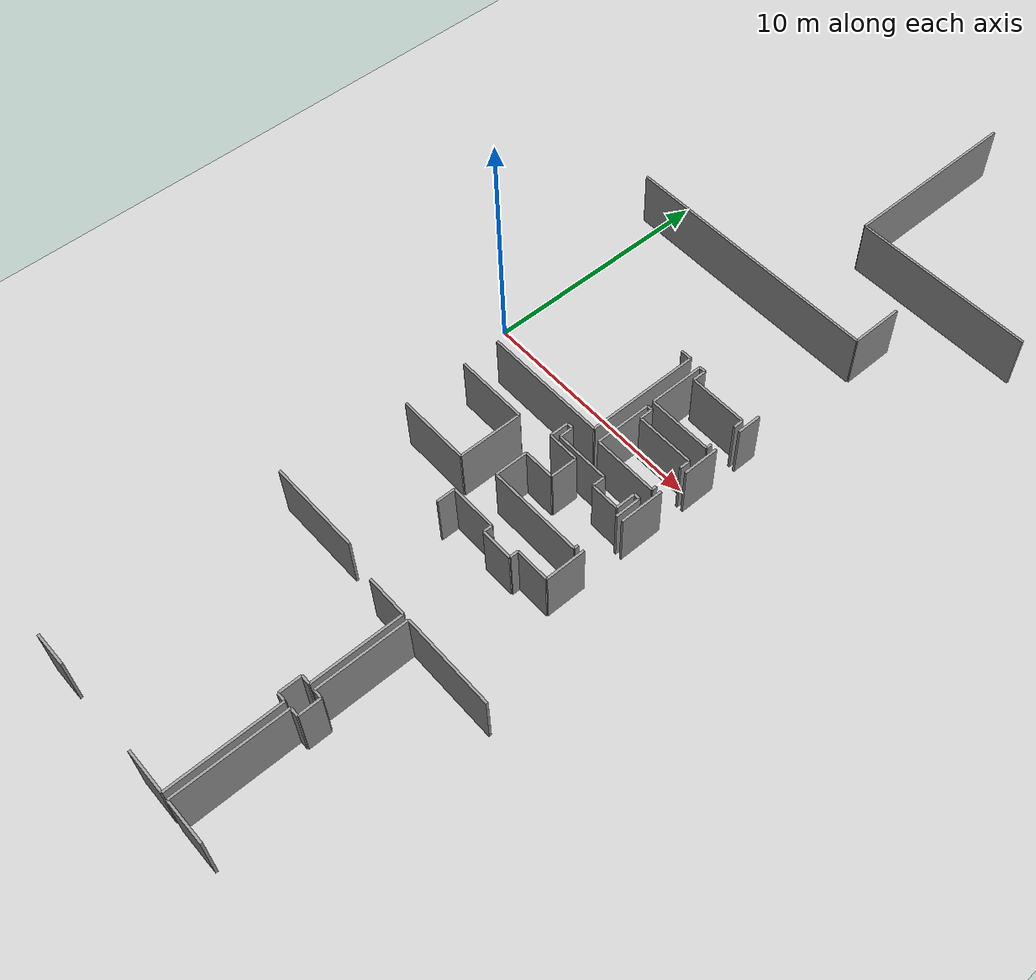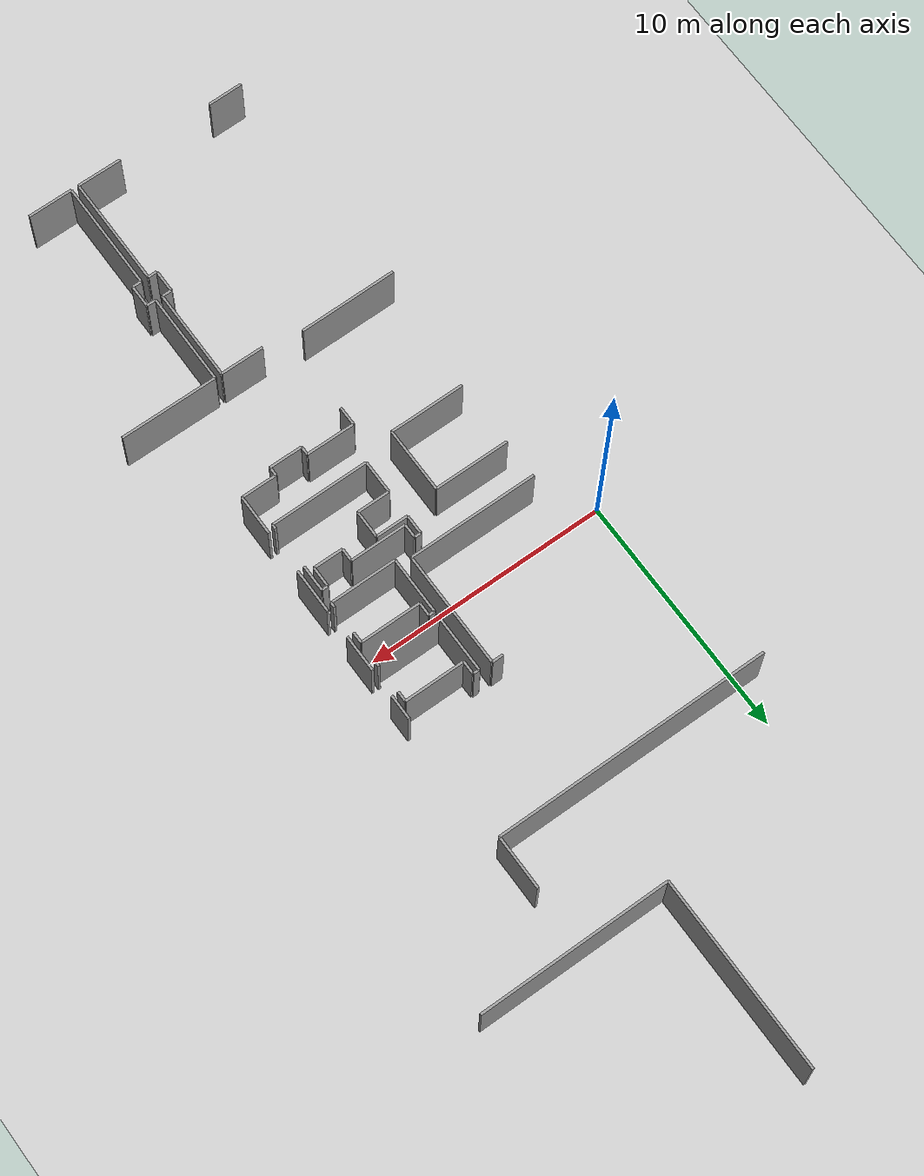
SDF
<sdf version="1.6">
 <world name="default">
  <model name="ground_plane">
   <static>1</static>
   <link name="link">
    <collision name="collision">
     <geometry><plane><normal>0 0 1</normal><size>100 100</size></plane></geometry>
     <surface><friction><ode><mu>100</mu><mu2>50</mu2></ode></friction></surface>
    </collision>
    <visual name="visual">
     <cast_shadows>0</cast_shadows>
     <geometry><plane><normal>0 0 1</normal><size>100 100</size></plane></geometry>
     <material>
      <script><uri>file://media/materials/scripts/gazebo.material</uri><name>Gazebo/Grey</name></script>
     </material>
    </visual>
   </link>
  </model>
  <model name="50057025">
   <static>1</static>
   <link name="Wall_84">
    <collision name="Wall_84_Collision">
     <geometry><box><size>1.79058842305 0.1 2.5</size></box></geometry>
     <pose>0.895294211524 0 1.25 0 0 0</pose>
    </collision>
    <visual name="Wall_84_Visual">
     <pose>0.895294211524 0 1.25 0 0 0</pose>
     <geometry><box><size>1.79058842305 0.1 2.5</size></box></geometry>
     <material>
      <script><uri>file://media/materials/scripts/gazebo.material</uri><name>Gazebo/Grey</name></script>
      <ambient>1 1 1 1</ambient>
     </material>
    </visual>
    <pose>62.4723723492 -32.3245731251 0 0 0 0.0</pose>
   </link>
   <link name="Wall_85">
    <collision name="Wall_85_Collision">
     <geometry><box><size>3.8203103923 0.1 2.5</size></box></geometry>
     <pose>1.91015519615 0 1.25 0 0 0</pose>
    </collision>
    <visual name="Wall_85_Visual">
     <pose>1.91015519615 0 1.25 0 0 0</pose>
     <geometry><box><size>3.8203103923 0.1 2.5</size></box></geometry>
     <material>
      <script><uri>file://media/materials/scripts/gazebo.material</uri><name>Gazebo/Grey</name></script>
      <ambient>1 1 1 1</ambient>
     </material>
    </visual>
    <pose>64.2629607722 -32.3245731251 0 0 0 -1.57079632679</pose>
   </link>
   <link name="Wall_86">
    <collision name="Wall_86_Collision">
     <geometry><box><size>0.395811616469 0.1 2.5</size></box></geometry>
     <pose>0.197905808235 0 1.25 0 0 0</pose>
    </collision>
    <visual name="Wall_86_Visual">
     <pose>0.197905808235 0 1.25 0 0 0</pose>
     <geometry><box><size>0.395811616469 0.1 2.5</size></box></geometry>
     <material>
      <script><uri>file://media/materials/scripts/gazebo.material</uri><name>Gazebo/Grey</name></script>
      <ambient>1 1 1 1</ambient>
     </material>
    </visual>
    <pose>64.2629607722 -36.1448835174 0 0 0 3.14159265359</pose>
   </link>
   <link name="Wall_87">
    <collision name="Wall_87_Collision">
     <geometry><box><size>0.941461678469 0.1 2.5</size></box></geometry>
     <pose>0.470730839235 0 1.25 0 0 0</pose>
    </collision>
    <visual name="Wall_87_Visual">
     <pose>0.470730839235 0 1.25 0 0 0</pose>
     <geometry><box><size>0.941461678469 0.1 2.5</size></box></geometry>
     <material>
      <script><uri>file://media/materials/scripts/gazebo.material</uri><name>Gazebo/Grey</name></script>
      <ambient>1 1 1 1</ambient>
     </material>
    </visual>
    <pose>63.8671491557 -36.1448835174 0 0 0 -1.57079632679</pose>
   </link>
   <link name="Wall_88">
    <collision name="Wall_88_Collision">
     <geometry><box><size>0.376685999162 0.1 2.5</size></box></geometry>
     <pose>0.188342999581 0 1.25 0 0 0</pose>
    </collision>
    <visual name="Wall_88_Visual">
     <pose>0.188342999581 0 1.25 0 0 0</pose>
     <geometry><box><size>0.376685999162 0.1 2.5</size></box></geometry>
     <material>
      <script><uri>file://media/materials/scripts/gazebo.material</uri><name>Gazebo/Grey</name></script>
      <ambient>1 1 1 1</ambient>
     </material>
    </visual>
    <pose>63.8671491557 -37.0863451959 0 0 0 0.0</pose>
   </link>
   <link name="Wall_89">
    <collision name="Wall_89_Collision">
     <geometry><box><size>4.62029316658 0.1 2.5</size></box></geometry>
     <pose>2.31014658329 0 1.25 0 0 0</pose>
    </collision>
    <visual name="Wall_89_Visual">
     <pose>2.31014658329 0 1.25 0 0 0</pose>
     <geometry><box><size>4.62029316658 0.1 2.5</size></box></geometry>
     <material>
      <script><uri>file://media/materials/scripts/gazebo.material</uri><name>Gazebo/Grey</name></script>
      <ambient>1 1 1 1</ambient>
     </material>
    </visual>
    <pose>64.2438351549 -37.0863451959 0 0 0 -1.57079632679</pose>
   </link>
   <link name="Wall_90">
    <collision name="Wall_90_Collision">
     <geometry><box><size>1.85391828168 0.1 2.5</size></box></geometry>
     <pose>0.926959140842 0 1.25 0 0 0</pose>
    </collision>
    <visual name="Wall_90_Visual">
     <pose>0.926959140842 0 1.25 0 0 0</pose>
     <geometry><box><size>1.85391828168 0.1 2.5</size></box></geometry>
     <material>
      <script><uri>file://media/materials/scripts/gazebo.material</uri><name>Gazebo/Grey</name></script>
      <ambient>1 1 1 1</ambient>
     </material>
    </visual>
    <pose>64.2438351549 -41.7066383624 0 0 0 3.14159265359</pose>
   </link>
   <link name="Wall_91">
    <collision name="Wall_91_Collision">
     <geometry><box><size>1.46189357891 0.1 2.5</size></box></geometry>
     <pose>0.730946789455 0 1.25 0 0 0</pose>
    </collision>
    <visual name="Wall_91_Visual">
     <pose>0.730946789455 0 1.25 0 0 0</pose>
     <geometry><box><size>1.46189357891 0.1 2.5</size></box></geometry>
     <material>
      <script><uri>file://media/materials/scripts/gazebo.material</uri><name>Gazebo/Grey</name></script>
      <ambient>1 1 1 1</ambient>
     </material>
    </visual>
    <pose>58.3810101619 -41.7066383624 0 0 0 -3.12911604602</pose>
   </link>
   <link name="Wall_92">
    <collision name="Wall_92_Collision">
     <geometry><box><size>4.62573953442 0.1 2.5</size></box></geometry>
     <pose>2.31286976721 0 1.25 0 0 0</pose>
    </collision>
    <visual name="Wall_92_Visual">
     <pose>2.31286976721 0 1.25 0 0 0</pose>
     <geometry><box><size>4.62573953442 0.1 2.5</size></box></geometry>
     <material>
      <script><uri>file://media/materials/scripts/gazebo.material</uri><name>Gazebo/Grey</name></script>
      <ambient>1 1 1 1</ambient>
     </material>
    </visual>
    <pose>64.5552913997 -41.7103114942 0 0 0 1.57079632679</pose>
   </link>
   <link name="Wall_93">
    <collision name="Wall_93_Collision">
     <geometry><box><size>0.37351950623 0.1 2.5</size></box></geometry>
     <pose>0.186759753115 0 1.25 0 0 0</pose>
    </collision>
    <visual name="Wall_93_Visual">
     <pose>0.186759753115 0 1.25 0 0 0</pose>
     <geometry><box><size>0.37351950623 0.1 2.5</size></box></geometry>
     <material>
      <script><uri>file://media/materials/scripts/gazebo.material</uri><name>Gazebo/Grey</name></script>
      <ambient>1 1 1 1</ambient>
     </material>
    </visual>
    <pose>64.5552913997 -37.0845719598 0 0 0 0.0</pose>
   </link>
   <link name="Wall_94">
    <collision name="Wall_94_Collision">
     <geometry><box><size>0.929049026177 0.1 2.5</size></box></geometry>
     <pose>0.464524513088 0 1.25 0 0 0</pose>
    </collision>
    <visual name="Wall_94_Visual">
     <pose>0.464524513088 0 1.25 0 0 0</pose>
     <geometry><box><size>0.929049026177 0.1 2.5</size></box></geometry>
     <material>
      <script><uri>file://media/materials/scripts/gazebo.material</uri><name>Gazebo/Grey</name></script>
      <ambient>1 1 1 1</ambient>
     </material>
    </visual>
    <pose>64.9288109059 -37.0845719598 0 0 0 1.57079632679</pose>
   </link>
   <link name="Wall_95">
    <collision name="Wall_95_Collision">
     <geometry><box><size>0.383145644742 0.1 2.5</size></box></geometry>
     <pose>0.191572822371 0 1.25 0 0 0</pose>
    </collision>
    <visual name="Wall_95_Visual">
     <pose>0.191572822371 0 1.25 0 0 0</pose>
     <geometry><box><size>0.383145644742 0.1 2.5</size></box></geometry>
     <material>
      <script><uri>file://media/materials/scripts/gazebo.material</uri><name>Gazebo/Grey</name></script>
      <ambient>1 1 1 1</ambient>
     </material>
    </visual>
    <pose>64.9288109059 -36.1555229336 0 0 0 3.14159265359</pose>
   </link>
   <link name="Wall_96">
    <collision name="Wall_96_Collision">
     <geometry><box><size>3.83094980855 0.1 2.5</size></box></geometry>
     <pose>1.91547490428 0 1.25 0 0 0</pose>
    </collision>
    <visual name="Wall_96_Visual">
     <pose>1.91547490428 0 1.25 0 0 0</pose>
     <geometry><box><size>3.83094980855 0.1 2.5</size></box></geometry>
     <material>
      <script><uri>file://media/materials/scripts/gazebo.material</uri><name>Gazebo/Grey</name></script>
      <ambient>1 1 1 1</ambient>
     </material>
    </visual>
    <pose>64.5456652612 -36.1555229336 0 0 0 1.57079632679</pose>
   </link>
   <link name="Wall_97">
    <collision name="Wall_97_Collision">
     <geometry><box><size>4.03208543958 0.1 2.5</size></box></geometry>
     <pose>2.01604271979 0 1.25 0 0 0</pose>
    </collision>
    <visual name="Wall_97_Visual">
     <pose>2.01604271979 0 1.25 0 0 0</pose>
     <geometry><box><size>4.03208543958 0.1 2.5</size></box></geometry>
     <material>
      <script><uri>file://media/materials/scripts/gazebo.material</uri><name>Gazebo/Grey</name></script>
      <ambient>1 1 1 1</ambient>
     </material>
    </visual>
    <pose>64.5456652612 -32.3245731251 0 0 0 0.0</pose>
   </link>
   <link name="Wall_103">
    <collision name="Wall_103_Collision">
     <geometry><box><size>1.86483521272 0.1 2.5</size></box></geometry>
     <pose>0.93241760636 0 1.25 0 0 0</pose>
    </collision>
    <visual name="Wall_103_Visual">
     <pose>0.93241760636 0 1.25 0 0 0</pose>
     <geometry><box><size>1.86483521272 0.1 2.5</size></box></geometry>
     <material>
      <script><uri>file://media/materials/scripts/gazebo.material</uri><name>Gazebo/Grey</name></script>
      <ambient>1 1 1 1</ambient>
     </material>
    </visual>
    <pose>66.420102417 -41.7008120154 0 0 0 -3.13649862715</pose>
   </link>
   <link name="Wall_220">
    <collision name="Wall_220_Collision">
     <geometry><box><size>0.787316802551 0.1 2.5</size></box></geometry>
     <pose>0.393658401276 0 1.25 0 0 0</pose>
    </collision>
    <visual name="Wall_220_Visual">
     <pose>0.393658401276 0 1.25 0 0 0</pose>
     <geometry><box><size>0.787316802551 0.1 2.5</size></box></geometry>
     <material>
      <script><uri>file://media/materials/scripts/gazebo.material</uri><name>Gazebo/Grey</name></script>
      <ambient>1 1 1 1</ambient>
     </material>
    </visual>
    <pose>61.5456031979 -28.7164177592 0 0 0 1.57079632679</pose>
   </link>
   <link name="Wall_221">
    <collision name="Wall_221_Collision">
     <geometry><box><size>2.01781595583 0.1 2.5</size></box></geometry>
     <pose>1.00890797792 0 1.25 0 0 0</pose>
    </collision>
    <visual name="Wall_221_Visual">
     <pose>1.00890797792 0 1.25 0 0 0</pose>
     <geometry><box><size>2.01781595583 0.1 2.5</size></box></geometry>
     <material>
      <script><uri>file://media/materials/scripts/gazebo.material</uri><name>Gazebo/Grey</name></script>
      <ambient>1 1 1 1</ambient>
     </material>
    </visual>
    <pose>61.5456031979 -27.9291009567 0 0 0 0.0</pose>
   </link>
   <link name="Wall_222">
    <collision name="Wall_222_Collision">
     <geometry><box><size>0.358067020723 0.1 2.5</size></box></geometry>
     <pose>0.179033510361 0 1.25 0 0 0</pose>
    </collision>
    <visual name="Wall_222_Visual">
     <pose>0.179033510361 0 1.25 0 0 0</pose>
     <geometry><box><size>0.358067020723 0.1 2.5</size></box></geometry>
     <material>
      <script><uri>file://media/materials/scripts/gazebo.material</uri><name>Gazebo/Grey</name></script>
      <ambient>1 1 1 1</ambient>
     </material>
    </visual>
    <pose>63.5634191537 -27.9291009567 0 0 0 -1.57079632679</pose>
   </link>
   <link name="Wall_223">
    <collision name="Wall_223_Collision">
     <geometry><box><size>1.37413127266 0.1 2.5</size></box></geometry>
     <pose>0.687065636332 0 1.25 0 0 0</pose>
    </collision>
    <visual name="Wall_223_Visual">
     <pose>0.687065636332 0 1.25 0 0 0</pose>
     <geometry><box><size>1.37413127266 0.1 2.5</size></box></geometry>
     <material>
      <script><uri>file://media/materials/scripts/gazebo.material</uri><name>Gazebo/Grey</name></script>
      <ambient>1 1 1 1</ambient>
     </material>
    </visual>
    <pose>63.5634191537 -28.2871679774 0 0 0 0.0</pose>
   </link>
   <link name="Wall_224">
    <collision name="Wall_224_Collision">
     <geometry><box><size>0.366426562063 0.1 2.5</size></box></geometry>
     <pose>0.183213281031 0 1.25 0 0 0</pose>
    </collision>
    <visual name="Wall_224_Visual">
     <pose>0.183213281031 0 1.25 0 0 0</pose>
     <geometry><box><size>0.366426562063 0.1 2.5</size></box></geometry>
     <material>
      <script><uri>file://media/materials/scripts/gazebo.material</uri><name>Gazebo/Grey</name></script>
      <ambient>1 1 1 1</ambient>
     </material>
    </visual>
    <pose>64.9375504264 -28.2871679774 0 0 0 1.57079632679</pose>
   </link>
   <link name="Wall_225">
    <collision name="Wall_225_Collision">
     <geometry><box><size>1.46570624825 0.1 2.5</size></box></geometry>
     <pose>0.732853124125 0 1.25 0 0 0</pose>
    </collision>
    <visual name="Wall_225_Visual">
     <pose>0.732853124125 0 1.25 0 0 0</pose>
     <geometry><box><size>1.46570624825 0.1 2.5</size></box></geometry>
     <material>
      <script><uri>file://media/materials/scripts/gazebo.material</uri><name>Gazebo/Grey</name></script>
      <ambient>1 1 1 1</ambient>
     </material>
    </visual>
    <pose>64.9375504264 -27.9207414153 0 0 0 0.0</pose>
   </link>
   <link name="Wall_226">
    <collision name="Wall_226_Collision">
     <geometry><box><size>1.68229436478 0.1 2.5</size></box></geometry>
     <pose>0.841147182391 0 1.25 0 0 0</pose>
    </collision>
    <visual name="Wall_226_Visual">
     <pose>0.841147182391 0 1.25 0 0 0</pose>
     <geometry><box><size>1.68229436478 0.1 2.5</size></box></geometry>
     <material>
      <script><uri>file://media/materials/scripts/gazebo.material</uri><name>Gazebo/Grey</name></script>
      <ambient>1 1 1 1</ambient>
     </material>
    </visual>
    <pose>66.4032566747 -27.9207414153 0 0 0 1.57079632679</pose>
   </link>
   <link name="Wall_227">
    <collision name="Wall_227_Collision">
     <geometry><box><size>1.85315832338 0.1 2.5</size></box></geometry>
     <pose>0.92657916169 0 1.25 0 0 0</pose>
    </collision>
    <visual name="Wall_227_Visual">
     <pose>0.92657916169 0 1.25 0 0 0</pose>
     <geometry><box><size>1.85315832338 0.1 2.5</size></box></geometry>
     <material>
      <script><uri>file://media/materials/scripts/gazebo.material</uri><name>Gazebo/Grey</name></script>
      <ambient>1 1 1 1</ambient>
     </material>
    </visual>
    <pose>66.4032566747 -24.4766103833 0 0 0 1.57079632679</pose>
   </link>
   <link name="Wall_228">
    <collision name="Wall_228_Collision">
     <geometry><box><size>1.51130374647 0.1 2.5</size></box></geometry>
     <pose>0.755651873234 0 1.25 0 0 0</pose>
    </collision>
    <visual name="Wall_228_Visual">
     <pose>0.755651873234 0 1.25 0 0 0</pose>
     <geometry><box><size>1.51130374647 0.1 2.5</size></box></geometry>
     <material>
      <script><uri>file://media/materials/scripts/gazebo.material</uri><name>Gazebo/Grey</name></script>
      <ambient>1 1 1 1</ambient>
     </material>
    </visual>
    <pose>66.4032566747 -21.4458966685 0 0 0 1.57079632679</pose>
   </link>
   <link name="Wall_229">
    <collision name="Wall_229_Collision">
     <geometry><box><size>1.0274636265 0.1 2.5</size></box></geometry>
     <pose>0.513731813248 0 1.25 0 0 0</pose>
    </collision>
    <visual name="Wall_229_Visual">
     <pose>0.513731813248 0 1.25 0 0 0</pose>
     <geometry><box><size>1.0274636265 0.1 2.5</size></box></geometry>
     <material>
      <script><uri>file://media/materials/scripts/gazebo.material</uri><name>Gazebo/Grey</name></script>
      <ambient>1 1 1 1</ambient>
     </material>
    </visual>
    <pose>66.4032566747 -18.7781897033 0 0 0 1.57079632679</pose>
   </link>
   <link name="Wall_237">
    <collision name="Wall_237_Collision">
     <geometry><box><size>4.05171084387 0.1 2.5</size></box></geometry>
     <pose>2.02585542194 0 1.25 0 0 0</pose>
    </collision>
    <visual name="Wall_237_Visual">
     <pose>2.02585542194 0 1.25 0 0 0</pose>
     <geometry><box><size>4.05171084387 0.1 2.5</size></box></geometry>
     <material>
      <script><uri>file://media/materials/scripts/gazebo.material</uri><name>Gazebo/Grey</name></script>
      <ambient>1 1 1 1</ambient>
     </material>
    </visual>
    <pose>60.906731584 -32.0157767344 0 0 0 -3.1339024213</pose>
   </link>
   <link name="Wall_238">
    <collision name="Wall_238_Collision">
     <geometry><box><size>2.36841005324 0.1 2.5</size></box></geometry>
     <pose>1.18420502662 0 1.25 0 0 0</pose>
    </collision>
    <visual name="Wall_238_Visual">
     <pose>1.18420502662 0 1.25 0 0 0</pose>
     <geometry><box><size>2.36841005324 0.1 2.5</size></box></geometry>
     <material>
      <script><uri>file://media/materials/scripts/gazebo.material</uri><name>Gazebo/Grey</name></script>
      <ambient>1 1 1 1</ambient>
     </material>
    </visual>
    <pose>63.376469411 -20.1454813513 0 0 0 1.57079632679</pose>
   </link>
   <link name="Wall_239">
    <collision name="Wall_239_Collision">
     <geometry><box><size>0.262818913336 0.1 2.5</size></box></geometry>
     <pose>0.131409456668 0 1.25 0 0 0</pose>
    </collision>
    <visual name="Wall_239_Visual">
     <pose>0.131409456668 0 1.25 0 0 0</pose>
     <geometry><box><size>0.262818913336 0.1 2.5</size></box></geometry>
     <material>
      <script><uri>file://media/materials/scripts/gazebo.material</uri><name>Gazebo/Grey</name></script>
      <ambient>1 1 1 1</ambient>
     </material>
    </visual>
    <pose>63.376469411 -17.777071298 0 0 0 0.0</pose>
   </link>
   <link name="Wall_240">
    <collision name="Wall_240_Collision">
     <geometry><box><size>0.561862505811 0.1 2.5</size></box></geometry>
     <pose>0.280931252905 0 1.25 0 0 0</pose>
    </collision>
    <visual name="Wall_240_Visual">
     <pose>0.280931252905 0 1.25 0 0 0</pose>
     <geometry><box><size>0.561862505811 0.1 2.5</size></box></geometry>
     <material>
      <script><uri>file://media/materials/scripts/gazebo.material</uri><name>Gazebo/Grey</name></script>
      <ambient>1 1 1 1</ambient>
     </material>
    </visual>
    <pose>63.6392883244 -17.777071298 0 0 0 -1.57079632679</pose>
   </link>
   <link name="Wall_241">
    <collision name="Wall_241_Collision">
     <geometry><box><size>2.49988283976 0.1 2.5</size></box></geometry>
     <pose>1.24994141988 0 1.25 0 0 0</pose>
    </collision>
    <visual name="Wall_241_Visual">
     <pose>1.24994141988 0 1.25 0 0 0</pose>
     <geometry><box><size>2.49988283976 0.1 2.5</size></box></geometry>
     <material>
      <script><uri>file://media/materials/scripts/gazebo.material</uri><name>Gazebo/Grey</name></script>
      <ambient>1 1 1 1</ambient>
     </material>
    </visual>
    <pose>63.6392883244 -18.3389338038 0 0 0 0.0</pose>
   </link>
   <link name="Wall_242">
    <collision name="Wall_242_Collision">
     <geometry><box><size>0.423803413986 0.1 2.5</size></box></geometry>
     <pose>0.211901706993 0 1.25 0 0 0</pose>
    </collision>
    <visual name="Wall_242_Visual">
     <pose>0.211901706993 0 1.25 0 0 0</pose>
     <geometry><box><size>0.423803413986 0.1 2.5</size></box></geometry>
     <material>
      <script><uri>file://media/materials/scripts/gazebo.material</uri><name>Gazebo/Grey</name></script>
      <ambient>1 1 1 1</ambient>
     </material>
    </visual>
    <pose>66.1391711641 -18.3389338038 0 0 0 -1.57079632679</pose>
   </link>
   <link name="Wall_243">
    <collision name="Wall_243_Collision">
     <geometry><box><size>0.231787282604 0.1 2.5</size></box></geometry>
     <pose>0.115893641302 0 1.25 0 0 0</pose>
    </collision>
    <visual name="Wall_243_Visual">
     <pose>0.115893641302 0 1.25 0 0 0</pose>
     <geometry><box><size>0.231787282604 0.1 2.5</size></box></geometry>
     <material>
      <script><uri>file://media/materials/scripts/gazebo.material</uri><name>Gazebo/Grey</name></script>
      <ambient>1 1 1 1</ambient>
     </material>
    </visual>
    <pose>66.1391711641 -19.9159739436 0 0 0 -1.57079632679</pose>
   </link>
   <link name="Wall_244">
    <collision name="Wall_244_Collision">
     <geometry><box><size>2.76270269381 0.1 2.5</size></box></geometry>
     <pose>1.38135134691 0 1.25 0 0 0</pose>
    </collision>
    <visual name="Wall_244_Visual">
     <pose>1.38135134691 0 1.25 0 0 0</pose>
     <geometry><box><size>2.76270269381 0.1 2.5</size></box></geometry>
     <material>
      <script><uri>file://media/materials/scripts/gazebo.material</uri><name>Gazebo/Grey</name></script>
      <ambient>1 1 1 1</ambient>
     </material>
    </visual>
    <pose>66.1391711641 -20.1477612262 0 0 0 3.14076741996</pose>
   </link>
   <link name="Wall_245">
    <collision name="Wall_245_Collision">
     <geometry><box><size>2.38664905252 0.1 2.5</size></box></geometry>
     <pose>1.19332452626 0 1.25 0 0 0</pose>
    </collision>
    <visual name="Wall_245_Visual">
     <pose>1.19332452626 0 1.25 0 0 0</pose>
     <geometry><box><size>2.38664905252 0.1 2.5</size></box></geometry>
     <material>
      <script><uri>file://media/materials/scripts/gazebo.material</uri><name>Gazebo/Grey</name></script>
      <ambient>1 1 1 1</ambient>
     </material>
    </visual>
    <pose>63.3765960708 -22.818761344 0 0 0 1.57079632679</pose>
   </link>
   <link name="Wall_246">
    <collision name="Wall_246_Collision">
     <geometry><box><size>0.239386865641 0.1 2.5</size></box></geometry>
     <pose>0.11969343282 0 1.25 0 0 0</pose>
    </collision>
    <visual name="Wall_246_Visual">
     <pose>0.11969343282 0 1.25 0 0 0</pose>
     <geometry><box><size>0.239386865641 0.1 2.5</size></box></geometry>
     <material>
      <script><uri>file://media/materials/scripts/gazebo.material</uri><name>Gazebo/Grey</name></script>
      <ambient>1 1 1 1</ambient>
     </material>
    </visual>
    <pose>63.3765960708 -20.4321122914 0 0 0 0.0</pose>
   </link>
   <link name="Wall_247">
    <collision name="Wall_247_Collision">
     <geometry><box><size>0.560342589203 0.1 2.5</size></box></geometry>
     <pose>0.280171294602 0 1.25 0 0 0</pose>
    </collision>
    <visual name="Wall_247_Visual">
     <pose>0.280171294602 0 1.25 0 0 0</pose>
     <geometry><box><size>0.560342589203 0.1 2.5</size></box></geometry>
     <material>
      <script><uri>file://media/materials/scripts/gazebo.material</uri><name>Gazebo/Grey</name></script>
      <ambient>1 1 1 1</ambient>
     </material>
    </visual>
    <pose>63.6159829364 -20.4321122914 0 0 0 -1.57079632679</pose>
   </link>
   <link name="Wall_248">
    <collision name="Wall_248_Collision">
     <geometry><box><size>2.51888179735 0.1 2.5</size></box></geometry>
     <pose>1.25944089868 0 1.25 0 0 0</pose>
    </collision>
    <visual name="Wall_248_Visual">
     <pose>1.25944089868 0 1.25 0 0 0</pose>
     <geometry><box><size>2.51888179735 0.1 2.5</size></box></geometry>
     <material>
      <script><uri>file://media/materials/scripts/gazebo.material</uri><name>Gazebo/Grey</name></script>
      <ambient>1 1 1 1</ambient>
     </material>
    </visual>
    <pose>63.6159829364 -20.9924548806 0 0 0 0.0</pose>
   </link>
   <link name="Wall_249">
    <collision name="Wall_249_Collision">
     <geometry><box><size>0.453441787827 0.1 2.5</size></box></geometry>
     <pose>0.226720893914 0 1.25 0 0 0</pose>
    </collision>
    <visual name="Wall_249_Visual">
     <pose>0.226720893914 0 1.25 0 0 0</pose>
     <geometry><box><size>0.453441787827 0.1 2.5</size></box></geometry>
     <material>
      <script><uri>file://media/materials/scripts/gazebo.material</uri><name>Gazebo/Grey</name></script>
      <ambient>1 1 1 1</ambient>
     </material>
    </visual>
    <pose>66.1348647338 -20.9924548806 0 0 0 -1.57079632679</pose>
   </link>
   <link name="Wall_250">
    <collision name="Wall_250_Collision">
     <geometry><box><size>0.208101915475 0.1 2.5</size></box></geometry>
     <pose>0.104050957737 0 1.25 0 0 0</pose>
    </collision>
    <visual name="Wall_250_Visual">
     <pose>0.104050957737 0 1.25 0 0 0</pose>
     <geometry><box><size>0.208101915475 0.1 2.5</size></box></geometry>
     <material>
      <script><uri>file://media/materials/scripts/gazebo.material</uri><name>Gazebo/Grey</name></script>
      <ambient>1 1 1 1</ambient>
     </material>
    </visual>
    <pose>66.1348647338 -22.6045797621 0 0 0 -1.57079632679</pose>
   </link>
   <link name="Wall_251">
    <collision name="Wall_251_Collision">
     <geometry><box><size>2.75827536326 0.1 2.5</size></box></geometry>
     <pose>1.37913768163 0 1.25 0 0 0</pose>
    </collision>
    <visual name="Wall_251_Visual">
     <pose>1.37913768163 0 1.25 0 0 0</pose>
     <geometry><box><size>2.75827536326 0.1 2.5</size></box></geometry>
     <material>
      <script><uri>file://media/materials/scripts/gazebo.material</uri><name>Gazebo/Grey</name></script>
      <ambient>1 1 1 1</ambient>
     </material>
    </visual>
    <pose>66.1348647338 -22.8126816775 0 0 0 -3.13938849681</pose>
   </link>
   <link name="Wall_252">
    <collision name="Wall_252_Collision">
     <geometry><box><size>1.39034371647 0.1 2.5</size></box></geometry>
     <pose>0.695171858237 0 1.25 0 0 0</pose>
    </collision>
    <visual name="Wall_252_Visual">
     <pose>0.695171858237 0 1.25 0 0 0</pose>
     <geometry><box><size>1.39034371647 0.1 2.5</size></box></geometry>
     <material>
      <script><uri>file://media/materials/scripts/gazebo.material</uri><name>Gazebo/Grey</name></script>
      <ambient>1 1 1 1</ambient>
     </material>
    </visual>
    <pose>62.0350163454 -26.4480688826 0 0 0 1.57079632679</pose>
   </link>
   <link name="Wall_253">
    <collision name="Wall_253_Collision">
     <geometry><box><size>1.35424569705 0.1 2.5</size></box></geometry>
     <pose>0.677122848526 0 1.25 0 0 0</pose>
    </collision>
    <visual name="Wall_253_Visual">
     <pose>0.677122848526 0 1.25 0 0 0</pose>
     <geometry><box><size>1.35424569705 0.1 2.5</size></box></geometry>
     <material>
      <script><uri>file://media/materials/scripts/gazebo.material</uri><name>Gazebo/Grey</name></script>
      <ambient>1 1 1 1</ambient>
     </material>
    </visual>
    <pose>62.0350163454 -25.0577251661 0 0 0 0.0</pose>
   </link>
   <link name="Wall_254">
    <collision name="Wall_254_Collision">
     <geometry><box><size>1.14424388582 0.1 2.5</size></box></geometry>
     <pose>0.572121942909 0 1.25 0 0 0</pose>
    </collision>
    <visual name="Wall_254_Visual">
     <pose>0.572121942909 0 1.25 0 0 0</pose>
     <geometry><box><size>1.14424388582 0.1 2.5</size></box></geometry>
     <material>
      <script><uri>file://media/materials/scripts/gazebo.material</uri><name>Gazebo/Grey</name></script>
      <ambient>1 1 1 1</ambient>
     </material>
    </visual>
    <pose>63.3892620425 -25.0577251661 0 0 0 1.57079632679</pose>
   </link>
   <link name="Wall_255">
    <collision name="Wall_255_Collision">
     <geometry><box><size>1.34702609317 0.1 2.5</size></box></geometry>
     <pose>0.673513046584 0 1.25 0 0 0</pose>
    </collision>
    <visual name="Wall_255_Visual">
     <pose>0.673513046584 0 1.25 0 0 0</pose>
     <geometry><box><size>1.34702609317 0.1 2.5</size></box></geometry>
     <material>
      <script><uri>file://media/materials/scripts/gazebo.material</uri><name>Gazebo/Grey</name></script>
      <ambient>1 1 1 1</ambient>
     </material>
    </visual>
    <pose>63.3892620425 -23.9134812803 0 0 0 3.14159265359</pose>
   </link>
   <link name="Wall_256">
    <collision name="Wall_256_Collision">
     <geometry><box><size>0.803909225514 0.1 2.5</size></box></geometry>
     <pose>0.401954612757 0 1.25 0 0 0</pose>
    </collision>
    <visual name="Wall_256_Visual">
     <pose>0.401954612757 0 1.25 0 0 0</pose>
     <geometry><box><size>0.803909225514 0.1 2.5</size></box></geometry>
     <material>
      <script><uri>file://media/materials/scripts/gazebo.material</uri><name>Gazebo/Grey</name></script>
      <ambient>1 1 1 1</ambient>
     </material>
    </visual>
    <pose>62.0422359493 -23.9134812803 0 0 0 1.57079632679</pose>
   </link>
   <link name="Wall_257">
    <collision name="Wall_257_Collision">
     <geometry><box><size>0.260792357859 0.1 2.5</size></box></geometry>
     <pose>0.13039617893 0 1.25 0 0 0</pose>
    </collision>
    <visual name="Wall_257_Visual">
     <pose>0.13039617893 0 1.25 0 0 0</pose>
     <geometry><box><size>0.260792357859 0.1 2.5</size></box></geometry>
     <material>
      <script><uri>file://media/materials/scripts/gazebo.material</uri><name>Gazebo/Grey</name></script>
      <ambient>1 1 1 1</ambient>
     </material>
    </visual>
    <pose>62.0422359493 -23.1095720548 0 0 0 0.0</pose>
   </link>
   <link name="Wall_258">
    <collision name="Wall_258_Collision">
     <geometry><box><size>0.579468206511 0.1 2.5</size></box></geometry>
     <pose>0.289734103256 0 1.25 0 0 0</pose>
    </collision>
    <visual name="Wall_258_Visual">
     <pose>0.289734103256 0 1.25 0 0 0</pose>
     <geometry><box><size>0.579468206511 0.1 2.5</size></box></geometry>
     <material>
      <script><uri>file://media/materials/scripts/gazebo.material</uri><name>Gazebo/Grey</name></script>
      <ambient>1 1 1 1</ambient>
     </material>
    </visual>
    <pose>62.3030283072 -23.1095720548 0 0 0 -1.57079632679</pose>
   </link>
   <link name="Wall_259">
    <collision name="Wall_259_Collision">
     <geometry><box><size>2.33902499883 0.1 2.5</size></box></geometry>
     <pose>1.16951249941 0 1.25 0 0 0</pose>
    </collision>
    <visual name="Wall_259_Visual">
     <pose>1.16951249941 0 1.25 0 0 0</pose>
     <geometry><box><size>2.33902499883 0.1 2.5</size></box></geometry>
     <material>
      <script><uri>file://media/materials/scripts/gazebo.material</uri><name>Gazebo/Grey</name></script>
      <ambient>1 1 1 1</ambient>
     </material>
    </visual>
    <pose>62.3030283072 -23.6890402613 0 0 0 0.0</pose>
   </link>
   <link name="Wall_260">
    <collision name="Wall_260_Collision">
     <geometry><box><size>0.543116867655 0.1 2.5</size></box></geometry>
     <pose>0.271558433827 0 1.25 0 0 0</pose>
    </collision>
    <visual name="Wall_260_Visual">
     <pose>0.271558433827 0 1.25 0 0 0</pose>
     <geometry><box><size>0.543116867655 0.1 2.5</size></box></geometry>
     <material>
      <script><uri>file://media/materials/scripts/gazebo.material</uri><name>Gazebo/Grey</name></script>
      <ambient>1 1 1 1</ambient>
     </material>
    </visual>
    <pose>64.642053306 -23.6890402613 0 0 0 -1.57079632679</pose>
   </link>
   <link name="Wall_261">
    <collision name="Wall_261_Collision">
     <geometry><box><size>1.22391284798 0.1 2.5</size></box></geometry>
     <pose>0.611956423991 0 1.25 0 0 0</pose>
    </collision>
    <visual name="Wall_261_Visual">
     <pose>0.611956423991 0 1.25 0 0 0</pose>
     <geometry><box><size>1.22391284798 0.1 2.5</size></box></geometry>
     <material>
      <script><uri>file://media/materials/scripts/gazebo.material</uri><name>Gazebo/Grey</name></script>
      <ambient>1 1 1 1</ambient>
     </material>
    </visual>
    <pose>64.642053306 -24.232157129 0 0 0 0.0</pose>
   </link>
   <link name="Wall_262">
    <collision name="Wall_262_Collision">
     <geometry><box><size>0.840133904653 0.1 2.5</size></box></geometry>
     <pose>0.420066952327 0 1.25 0 0 0</pose>
    </collision>
    <visual name="Wall_262_Visual">
     <pose>0.420066952327 0 1.25 0 0 0</pose>
     <geometry><box><size>0.840133904653 0.1 2.5</size></box></geometry>
     <material>
      <script><uri>file://media/materials/scripts/gazebo.material</uri><name>Gazebo/Grey</name></script>
      <ambient>1 1 1 1</ambient>
     </material>
    </visual>
    <pose>65.865966154 -24.232157129 0 0 0 1.57079632679</pose>
   </link>
   <link name="Wall_263">
    <collision name="Wall_263_Collision">
     <geometry><box><size>0.253446094258 0.1 2.5</size></box></geometry>
     <pose>0.126723047129 0 1.25 0 0 0</pose>
    </collision>
    <visual name="Wall_263_Visual">
     <pose>0.126723047129 0 1.25 0 0 0</pose>
     <geometry><box><size>0.253446094258 0.1 2.5</size></box></geometry>
     <material>
      <script><uri>file://media/materials/scripts/gazebo.material</uri><name>Gazebo/Grey</name></script>
      <ambient>1 1 1 1</ambient>
     </material>
    </visual>
    <pose>65.865966154 -23.3920232243 0 0 0 0.0</pose>
   </link>
   <link name="Wall_264">
    <collision name="Wall_264_Collision">
     <geometry><box><size>1.09357999891 0.1 2.5</size></box></geometry>
     <pose>0.546789999455 0 1.25 0 0 0</pose>
    </collision>
    <visual name="Wall_264_Visual">
     <pose>0.546789999455 0 1.25 0 0 0</pose>
     <geometry><box><size>1.09357999891 0.1 2.5</size></box></geometry>
     <material>
      <script><uri>file://media/materials/scripts/gazebo.material</uri><name>Gazebo/Grey</name></script>
      <ambient>1 1 1 1</ambient>
     </material>
    </visual>
    <pose>66.1194122482 -23.3920232243 0 0 0 -1.57079632679</pose>
   </link>
   <link name="Wall_265">
    <collision name="Wall_265_Collision">
     <geometry><box><size>0.180743416545 0.1 2.5</size></box></geometry>
     <pose>0.0903717082723 0 1.25 0 0 0</pose>
    </collision>
    <visual name="Wall_265_Visual">
     <pose>0.0903717082723 0 1.25 0 0 0</pose>
     <geometry><box><size>0.180743416545 0.1 2.5</size></box></geometry>
     <material>
      <script><uri>file://media/materials/scripts/gazebo.material</uri><name>Gazebo/Grey</name></script>
      <ambient>1 1 1 1</ambient>
     </material>
    </visual>
    <pose>66.1194122482 -26.2460466336 0 0 0 -1.57079632679</pose>
   </link>
   <link name="Wall_266">
    <collision name="Wall_266_Collision">
     <geometry><box><size>4.08445133153 0.1 2.5</size></box></geometry>
     <pose>2.04222566576 0 1.25 0 0 0</pose>
    </collision>
    <visual name="Wall_266_Visual">
     <pose>2.04222566576 0 1.25 0 0 0</pose>
     <geometry><box><size>4.08445133153 0.1 2.5</size></box></geometry>
     <material>
      <script><uri>file://media/materials/scripts/gazebo.material</uri><name>Gazebo/Grey</name></script>
      <ambient>1 1 1 1</ambient>
     </material>
    </visual>
    <pose>66.1194122482 -26.4267900501 0 0 0 -3.13638291377</pose>
   </link>
   <link name="Wall_272">
    <collision name="Wall_272_Collision">
     <geometry><box><size>0.469400912203 0.1 2.5</size></box></geometry>
     <pose>0.234700456102 0 1.25 0 0 0</pose>
    </collision>
    <visual name="Wall_272_Visual">
     <pose>0.234700456102 0 1.25 0 0 0</pose>
     <geometry><box><size>0.469400912203 0.1 2.5</size></box></geometry>
     <material>
      <script><uri>file://media/materials/scripts/gazebo.material</uri><name>Gazebo/Grey</name></script>
      <ambient>1 1 1 1</ambient>
     </material>
    </visual>
    <pose>62.3811773527 -17.7384400843 0 0 0 0.0</pose>
   </link>
   <link name="Wall_273">
    <collision name="Wall_273_Collision">
     <geometry><box><size>4.81737568665 0.1 2.5</size></box></geometry>
     <pose>2.40868784333 0 1.25 0 0 0</pose>
    </collision>
    <visual name="Wall_273_Visual">
     <pose>2.40868784333 0 1.25 0 0 0</pose>
     <geometry><box><size>4.81737568665 0.1 2.5</size></box></geometry>
     <material>
      <script><uri>file://media/materials/scripts/gazebo.material</uri><name>Gazebo/Grey</name></script>
      <ambient>1 1 1 1</ambient>
     </material>
    </visual>
    <pose>62.8505782649 -17.7384400843 0 0 0 -1.57079632679</pose>
   </link>
   <link name="Wall_274">
    <collision name="Wall_274_Collision">
     <geometry><box><size>5.38671386913 0.1 2.5</size></box></geometry>
     <pose>2.69335693456 0 1.25 0 0 0</pose>
    </collision>
    <visual name="Wall_274_Visual">
     <pose>2.69335693456 0 1.25 0 0 0</pose>
     <geometry><box><size>5.38671386913 0.1 2.5</size></box></geometry>
     <material>
      <script><uri>file://media/materials/scripts/gazebo.material</uri><name>Gazebo/Grey</name></script>
      <ambient>1 1 1 1</ambient>
     </material>
    </visual>
    <pose>62.8505782649 -22.5558157709 0 0 0 -3.14058157914</pose>
   </link>
   <link name="Wall_277">
    <collision name="Wall_277_Collision">
     <geometry><box><size>3.12583516251 0.1 2.5</size></box></geometry>
     <pose>1.56291758126 0 1.25 0 0 0</pose>
    </collision>
    <visual name="Wall_277_Visual">
     <pose>1.56291758126 0 1.25 0 0 0</pose>
     <geometry><box><size>3.12583516251 0.1 2.5</size></box></geometry>
     <material>
      <script><uri>file://media/materials/scripts/gazebo.material</uri><name>Gazebo/Grey</name></script>
      <ambient>1 1 1 1</ambient>
     </material>
    </visual>
    <pose>57.4752665237 -24.1669273746 0 0 0 0.0</pose>
   </link>
   <link name="Wall_278">
    <collision name="Wall_278_Collision">
     <geometry><box><size>2.71773755347 0.1 2.5</size></box></geometry>
     <pose>1.35886877673 0 1.25 0 0 0</pose>
    </collision>
    <visual name="Wall_278_Visual">
     <pose>1.35886877673 0 1.25 0 0 0</pose>
     <geometry><box><size>2.71773755347 0.1 2.5</size></box></geometry>
     <material>
      <script><uri>file://media/materials/scripts/gazebo.material</uri><name>Gazebo/Grey</name></script>
      <ambient>1 1 1 1</ambient>
     </material>
    </visual>
    <pose>60.6011016862 -24.1669273746 0 0 0 -1.57079632679</pose>
   </link>
   <link name="Wall_279">
    <collision name="Wall_279_Collision">
     <geometry><box><size>3.12584809841 0.1 2.5</size></box></geometry>
     <pose>1.56292404921 0 1.25 0 0 0</pose>
    </collision>
    <visual name="Wall_279_Visual">
     <pose>1.56292404921 0 1.25 0 0 0</pose>
     <geometry><box><size>3.12584809841 0.1 2.5</size></box></geometry>
     <material>
      <script><uri>file://media/materials/scripts/gazebo.material</uri><name>Gazebo/Grey</name></script>
      <ambient>1 1 1 1</ambient>
     </material>
    </visual>
    <pose>60.6011016862 -26.8846649281 0 0 0 -3.13871572162</pose>
   </link>
   <link name="Wall_305">
    <collision name="Wall_305_Collision">
     <geometry><box><size>7.92383191242 0.1 2.5</size></box></geometry>
     <pose>3.96191595621 0 1.25 0 0 0</pose>
    </collision>
    <visual name="Wall_305_Visual">
     <pose>3.96191595621 0 1.25 0 0 0</pose>
     <geometry><box><size>7.92383191242 0.1 2.5</size></box></geometry>
     <material>
      <script><uri>file://media/materials/scripts/gazebo.material</uri><name>Gazebo/Grey</name></script>
      <ambient>1 1 1 1</ambient>
     </material>
    </visual>
    <pose>62.6493159742 -0.0 0 0 0 -1.57079632679</pose>
   </link>
   <link name="Wall_306">
    <collision name="Wall_306_Collision">
     <geometry><box><size>7.88013430996 0.1 2.5</size></box></geometry>
     <pose>3.94006715498 0 1.25 0 0 0</pose>
    </collision>
    <visual name="Wall_306_Visual">
     <pose>3.94006715498 0 1.25 0 0 0</pose>
     <geometry><box><size>7.88013430996 0.1 2.5</size></box></geometry>
     <material>
      <script><uri>file://media/materials/scripts/gazebo.material</uri><name>Gazebo/Grey</name></script>
      <ambient>1 1 1 1</ambient>
     </material>
    </visual>
    <pose>62.6493159742 -7.92383191242 0 0 0 0.0</pose>
   </link>
   <link name="Wall_311">
    <collision name="Wall_311_Collision">
     <geometry><box><size>2.22857772537 0.1 2.5</size></box></geometry>
     <pose>1.11428886268 0 1.25 0 0 0</pose>
    </collision>
    <visual name="Wall_311_Visual">
     <pose>1.11428886268 0 1.25 0 0 0</pose>
     <geometry><box><size>2.22857772537 0.1 2.5</size></box></geometry>
     <material>
      <script><uri>file://media/materials/scripts/gazebo.material</uri><name>Gazebo/Grey</name></script>
      <ambient>1 1 1 1</ambient>
     </material>
    </visual>
    <pose>66.3781780506 -10.2835024452 0 0 0 -1.57079632679</pose>
   </link>
   <link name="Wall_312">
    <collision name="Wall_312_Collision">
     <geometry><box><size>11.4459853303 0.1 2.5</size></box></geometry>
     <pose>5.72299266514 0 1.25 0 0 0</pose>
    </collision>
    <visual name="Wall_312_Visual">
     <pose>5.72299266514 0 1.25 0 0 0</pose>
     <geometry><box><size>11.4459853303 0.1 2.5</size></box></geometry>
     <material>
      <script><uri>file://media/materials/scripts/gazebo.material</uri><name>Gazebo/Grey</name></script>
      <ambient>1 1 1 1</ambient>
     </material>
    </visual>
    <pose>66.3781780506 -12.5120801705 0 0 0 3.14159265359</pose>
   </link>
   <pose>-55.75 20.8575555688 0 0 0 0</pose>
  </model>
 </world>
</sdf>
